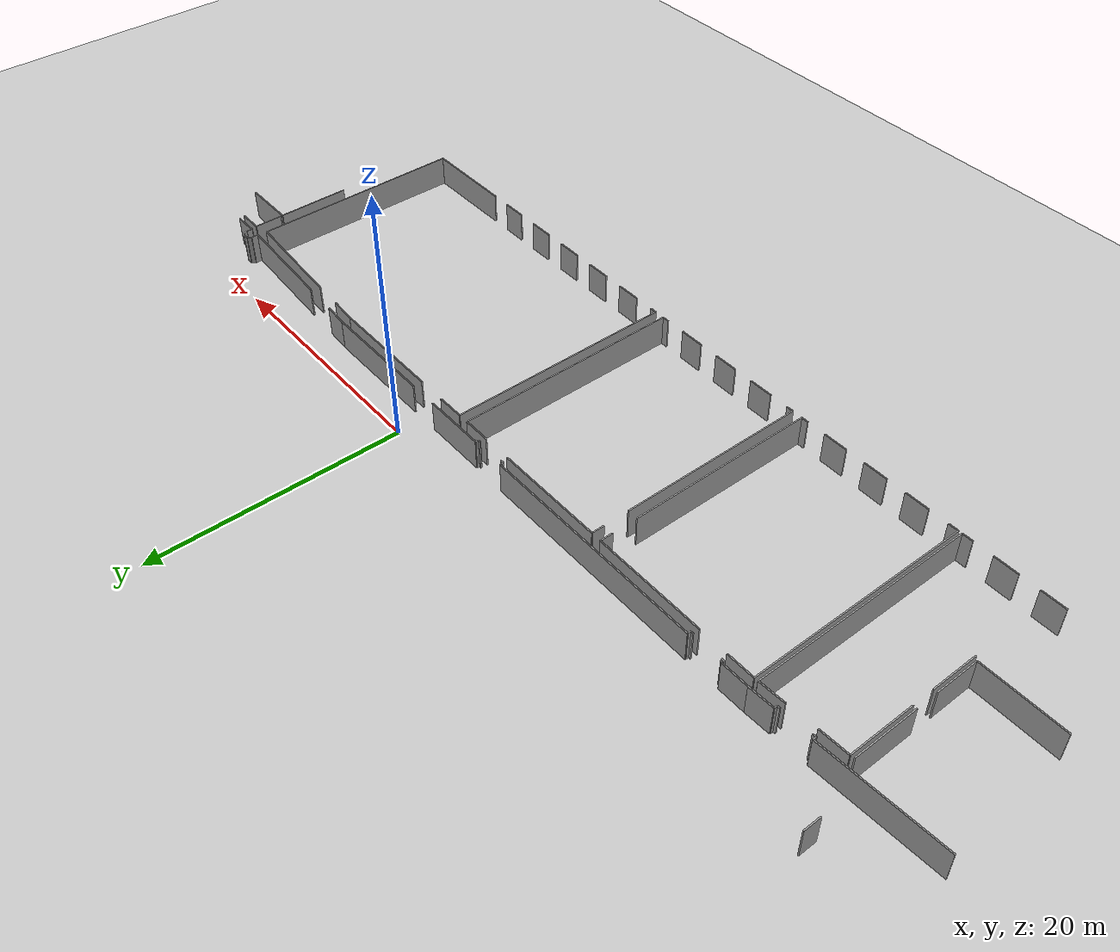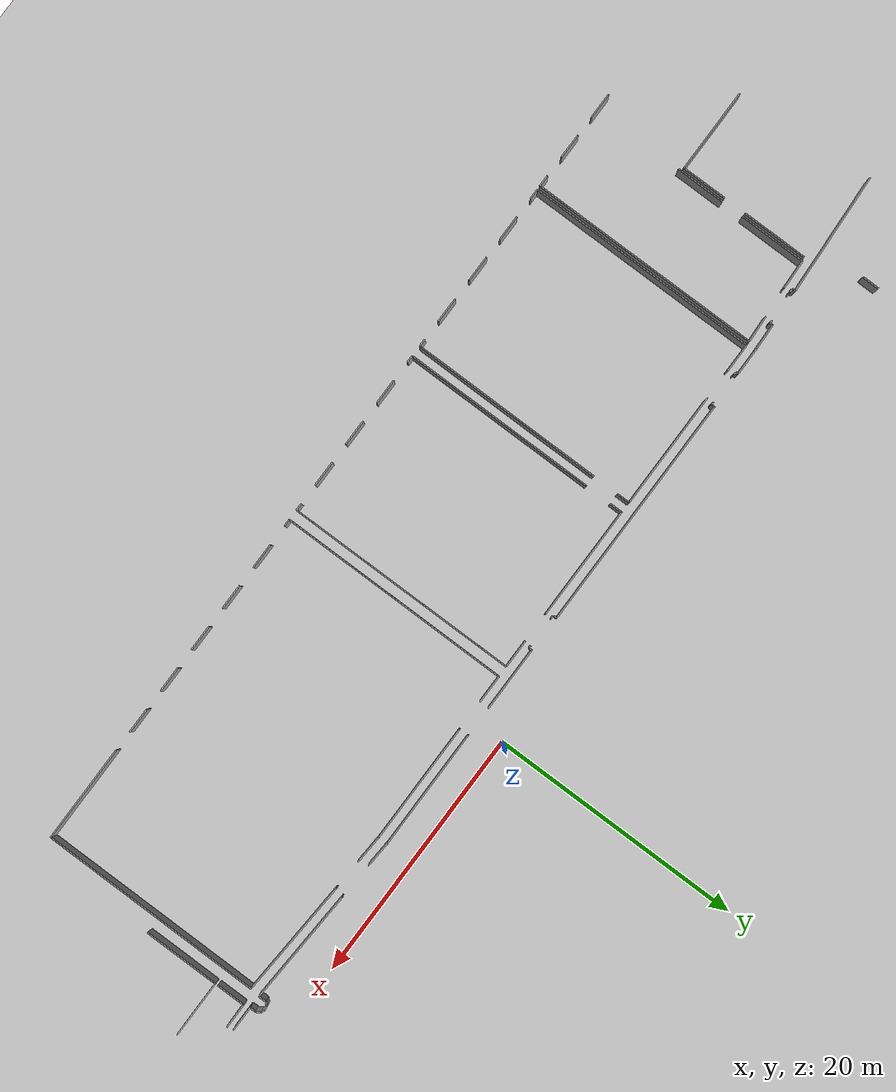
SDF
<sdf version="1.6">
 <world name="default">
  <model name="ground_plane">
   <static>1</static>
   <link name="link">
    <collision name="collision">
     <geometry><plane><normal>0 0 1</normal><size>100 100</size></plane></geometry>
     <surface><friction><ode><mu>100</mu><mu2>50</mu2></ode></friction></surface>
    </collision>
    <visual name="visual">
     <cast_shadows>0</cast_shadows>
     <geometry><plane><normal>0 0 1</normal><size>100 100</size></plane></geometry>
     <material>
      <script><uri>file://media/materials/scripts/gazebo.material</uri><name>Gazebo/Grey</name></script>
     </material>
    </visual>
   </link>
  </model>
  <model name="0510032217_A-40">
   <static>1</static>
   <link name="Wall_470">
    <collision name="Wall_470_Collision">
     <geometry><box><size>1.37765201502 0.1 2.5</size></box></geometry>
     <pose>0.688826007512 0 1.25 0 0 0</pose>
    </collision>
    <visual name="Wall_470_Visual">
     <pose>0.688826007512 0 1.25 0 0 0</pose>
     <geometry><box><size>1.37765201502 0.1 2.5</size></box></geometry>
     <material>
      <script><uri>file://media/materials/scripts/gazebo.material</uri><name>Gazebo/Grey</name></script>
      <ambient>1 1 1 1</ambient>
     </material>
    </visual>
    <pose>35.4521749061 -52.4312506345 0 0 0 1.57079632679</pose>
   </link>
   <link name="Wall_495">
    <collision name="Wall_495_Collision">
     <geometry><box><size>1.95538524008 0.1 2.5</size></box></geometry>
     <pose>0.977692620039 0 1.25 0 0 0</pose>
    </collision>
    <visual name="Wall_495_Visual">
     <pose>0.977692620039 0 1.25 0 0 0</pose>
     <geometry><box><size>1.95538524008 0.1 2.5</size></box></geometry>
     <material>
      <script><uri>file://media/materials/scripts/gazebo.material</uri><name>Gazebo/Grey</name></script>
      <ambient>1 1 1 1</ambient>
     </material>
    </visual>
    <pose>104.034425439 -56.1718607248 0 0 0 3.14159265359</pose>
   </link>
   <link name="Wall_496">
    <collision name="Wall_496_Collision">
     <geometry><box><size>0.462516495787 0.1 2.5</size></box></geometry>
     <pose>0.231258247894 0 1.25 0 0 0</pose>
    </collision>
    <visual name="Wall_496_Visual">
     <pose>0.231258247894 0 1.25 0 0 0</pose>
     <geometry><box><size>0.462516495787 0.1 2.5</size></box></geometry>
     <material>
      <script><uri>file://media/materials/scripts/gazebo.material</uri><name>Gazebo/Grey</name></script>
      <ambient>1 1 1 1</ambient>
     </material>
    </visual>
    <pose>102.079040199 -56.1718607248 0 0 0 1.57079632679</pose>
   </link>
   <link name="Wall_497">
    <collision name="Wall_497_Collision">
     <geometry><box><size>0.389348738676 0.1 2.5</size></box></geometry>
     <pose>0.194674369338 0 1.25 0 0 0</pose>
    </collision>
    <visual name="Wall_497_Visual">
     <pose>0.194674369338 0 1.25 0 0 0</pose>
     <geometry><box><size>0.389348738676 0.1 2.5</size></box></geometry>
     <material>
      <script><uri>file://media/materials/scripts/gazebo.material</uri><name>Gazebo/Grey</name></script>
      <ambient>1 1 1 1</ambient>
     </material>
    </visual>
    <pose>102.079040199 -55.709344229 0 0 0 2.0289054412</pose>
   </link>
   <link name="Wall_498">
    <collision name="Wall_498_Collision">
     <geometry><box><size>0.306541389418 0.1 2.5</size></box></geometry>
     <pose>0.153270694709 0 1.25 0 0 0</pose>
    </collision>
    <visual name="Wall_498_Visual">
     <pose>0.153270694709 0 1.25 0 0 0</pose>
     <geometry><box><size>0.306541389418 0.1 2.5</size></box></geometry>
     <material>
      <script><uri>file://media/materials/scripts/gazebo.material</uri><name>Gazebo/Grey</name></script>
      <ambient>1 1 1 1</ambient>
     </material>
    </visual>
    <pose>101.906849558 -55.3601411024 0 0 0 2.78999240306</pose>
   </link>
   <link name="Wall_499">
    <collision name="Wall_499_Collision">
     <geometry><box><size>0.302959336155 0.1 2.5</size></box></geometry>
     <pose>0.151479668077 0 1.25 0 0 0</pose>
    </collision>
    <visual name="Wall_499_Visual">
     <pose>0.151479668077 0 1.25 0 0 0</pose>
     <geometry><box><size>0.302959336155 0.1 2.5</size></box></geometry>
     <material>
      <script><uri>file://media/materials/scripts/gazebo.material</uri><name>Gazebo/Grey</name></script>
      <ambient>1 1 1 1</ambient>
     </material>
    </visual>
    <pose>101.619061517 -55.2545680642 0 0 0 -2.95027554689</pose>
   </link>
   <link name="Wall_500">
    <collision name="Wall_500_Collision">
     <geometry><box><size>0.35383877132 0.1 2.5</size></box></geometry>
     <pose>0.17691938566 0 1.25 0 0 0</pose>
    </collision>
    <visual name="Wall_500_Visual">
     <pose>0.17691938566 0 1.25 0 0 0</pose>
     <geometry><box><size>0.35383877132 0.1 2.5</size></box></geometry>
     <material>
      <script><uri>file://media/materials/scripts/gazebo.material</uri><name>Gazebo/Grey</name></script>
      <ambient>1 1 1 1</ambient>
     </material>
    </visual>
    <pose>101.321629784 -55.3121764288 0 0 0 -2.27953928958</pose>
   </link>
   <link name="Wall_501">
    <collision name="Wall_501_Collision">
     <geometry><box><size>0.566059283321 0.1 2.5</size></box></geometry>
     <pose>0.283029641661 0 1.25 0 0 0</pose>
    </collision>
    <visual name="Wall_501_Visual">
     <pose>0.283029641661 0 1.25 0 0 0</pose>
     <geometry><box><size>0.566059283321 0.1 2.5</size></box></geometry>
     <material>
      <script><uri>file://media/materials/scripts/gazebo.material</uri><name>Gazebo/Grey</name></script>
      <ambient>1 1 1 1</ambient>
     </material>
    </visual>
    <pose>101.091323216 -55.5808039793 0 0 0 -1.57079632679</pose>
   </link>
   <link name="Wall_502">
    <collision name="Wall_502_Collision">
     <geometry><box><size>8.98557457504 0.1 2.5</size></box></geometry>
     <pose>4.49278728752 0 1.25 0 0 0</pose>
    </collision>
    <visual name="Wall_502_Visual">
     <pose>4.49278728752 0 1.25 0 0 0</pose>
     <geometry><box><size>8.98557457504 0.1 2.5</size></box></geometry>
     <material>
      <script><uri>file://media/materials/scripts/gazebo.material</uri><name>Gazebo/Grey</name></script>
      <ambient>1 1 1 1</ambient>
     </material>
    </visual>
    <pose>101.091323216 -56.1468632626 0 0 0 3.08496302635</pose>
   </link>
   <link name="Wall_503">
    <collision name="Wall_503_Collision">
     <geometry><box><size>2.03557413261 0.1 2.5</size></box></geometry>
     <pose>1.01778706631 0 1.25 0 0 0</pose>
    </collision>
    <visual name="Wall_503_Visual">
     <pose>1.01778706631 0 1.25 0 0 0</pose>
     <geometry><box><size>2.03557413261 0.1 2.5</size></box></geometry>
     <material>
      <script><uri>file://media/materials/scripts/gazebo.material</uri><name>Gazebo/Grey</name></script>
      <ambient>1 1 1 1</ambient>
     </material>
    </visual>
    <pose>89.2609252868 -55.4943914323 0 0 0 3.07846614614</pose>
   </link>
   <link name="Wall_504">
    <collision name="Wall_504_Collision">
     <geometry><box><size>9.41122728657 0.1 2.5</size></box></geometry>
     <pose>4.70561364328 0 1.25 0 0 0</pose>
    </collision>
    <visual name="Wall_504_Visual">
     <pose>4.70561364328 0 1.25 0 0 0</pose>
     <geometry><box><size>9.41122728657 0.1 2.5</size></box></geometry>
     <material>
      <script><uri>file://media/materials/scripts/gazebo.material</uri><name>Gazebo/Grey</name></script>
      <ambient>1 1 1 1</ambient>
     </material>
    </visual>
    <pose>87.2294056441 -55.3659780733 0 0 0 3.14159265359</pose>
   </link>
   <link name="Wall_505">
    <collision name="Wall_505_Collision">
     <geometry><box><size>5.07562683991 0.1 2.5</size></box></geometry>
     <pose>2.53781341996 0 1.25 0 0 0</pose>
    </collision>
    <visual name="Wall_505_Visual">
     <pose>2.53781341996 0 1.25 0 0 0</pose>
     <geometry><box><size>5.07562683991 0.1 2.5</size></box></geometry>
     <material>
      <script><uri>file://media/materials/scripts/gazebo.material</uri><name>Gazebo/Grey</name></script>
      <ambient>1 1 1 1</ambient>
     </material>
    </visual>
    <pose>75.4488757487 -55.3659780733 0 0 0 3.14159265359</pose>
   </link>
   <link name="Wall_506">
    <collision name="Wall_506_Collision">
     <geometry><box><size>0.232083037255 0.1 2.5</size></box></geometry>
     <pose>0.116041518628 0 1.25 0 0 0</pose>
    </collision>
    <visual name="Wall_506_Visual">
     <pose>0.116041518628 0 1.25 0 0 0</pose>
     <geometry><box><size>0.232083037255 0.1 2.5</size></box></geometry>
     <material>
      <script><uri>file://media/materials/scripts/gazebo.material</uri><name>Gazebo/Grey</name></script>
      <ambient>1 1 1 1</ambient>
     </material>
    </visual>
    <pose>70.3732489087 -55.3659780733 0 0 0 -1.57079632679</pose>
   </link>
   <link name="Wall_507">
    <collision name="Wall_507_Collision">
     <geometry><box><size>0.220789767536 0.1 2.5</size></box></geometry>
     <pose>0.110394883768 0 1.25 0 0 0</pose>
    </collision>
    <visual name="Wall_507_Visual">
     <pose>0.110394883768 0 1.25 0 0 0</pose>
     <geometry><box><size>0.220789767536 0.1 2.5</size></box></geometry>
     <material>
      <script><uri>file://media/materials/scripts/gazebo.material</uri><name>Gazebo/Grey</name></script>
      <ambient>1 1 1 1</ambient>
     </material>
    </visual>
    <pose>70.3732489087 -55.5980611105 0 0 0 3.14159265359</pose>
   </link>
   <link name="Wall_508">
    <collision name="Wall_508_Collision">
     <geometry><box><size>0.302126687646 0.1 2.5</size></box></geometry>
     <pose>0.151063343823 0 1.25 0 0 0</pose>
    </collision>
    <visual name="Wall_508_Visual">
     <pose>0.151063343823 0 1.25 0 0 0</pose>
     <geometry><box><size>0.302126687646 0.1 2.5</size></box></geometry>
     <material>
      <script><uri>file://media/materials/scripts/gazebo.material</uri><name>Gazebo/Grey</name></script>
      <ambient>1 1 1 1</ambient>
     </material>
    </visual>
    <pose>67.822619531 -55.5980611105 0 0 0 3.14159265359</pose>
   </link>
   <link name="Wall_509">
    <collision name="Wall_509_Collision">
     <geometry><box><size>0.279032585524 0.1 2.5</size></box></geometry>
     <pose>0.139516292762 0 1.25 0 0 0</pose>
    </collision>
    <visual name="Wall_509_Visual">
     <pose>0.139516292762 0 1.25 0 0 0</pose>
     <geometry><box><size>0.279032585524 0.1 2.5</size></box></geometry>
     <material>
      <script><uri>file://media/materials/scripts/gazebo.material</uri><name>Gazebo/Grey</name></script>
      <ambient>1 1 1 1</ambient>
     </material>
    </visual>
    <pose>67.5204928434 -55.5980611105 0 0 0 1.57079632679</pose>
   </link>
   <link name="Wall_510">
    <collision name="Wall_510_Collision">
     <geometry><box><size>18.4979951274 0.1 2.5</size></box></geometry>
     <pose>9.2489975637 0 1.25 0 0 0</pose>
    </collision>
    <visual name="Wall_510_Visual">
     <pose>9.2489975637 0 1.25 0 0 0</pose>
     <geometry><box><size>18.4979951274 0.1 2.5</size></box></geometry>
     <material>
      <script><uri>file://media/materials/scripts/gazebo.material</uri><name>Gazebo/Grey</name></script>
      <ambient>1 1 1 1</ambient>
     </material>
    </visual>
    <pose>67.5204928434 -55.319028525 0 0 0 3.14159265359</pose>
   </link>
   <link name="Wall_511">
    <collision name="Wall_511_Collision">
     <geometry><box><size>0.256953608771 0.1 2.5</size></box></geometry>
     <pose>0.128476804385 0 1.25 0 0 0</pose>
    </collision>
    <visual name="Wall_511_Visual">
     <pose>0.128476804385 0 1.25 0 0 0</pose>
     <geometry><box><size>0.256953608771 0.1 2.5</size></box></geometry>
     <material>
      <script><uri>file://media/materials/scripts/gazebo.material</uri><name>Gazebo/Grey</name></script>
      <ambient>1 1 1 1</ambient>
     </material>
    </visual>
    <pose>49.022497716 -55.319028525 0 0 0 -1.57079632679</pose>
   </link>
   <link name="Wall_512">
    <collision name="Wall_512_Collision">
     <geometry><box><size>0.209623388488 0.1 2.5</size></box></geometry>
     <pose>0.104811694244 0 1.25 0 0 0</pose>
    </collision>
    <visual name="Wall_512_Visual">
     <pose>0.104811694244 0 1.25 0 0 0</pose>
     <geometry><box><size>0.209623388488 0.1 2.5</size></box></geometry>
     <material>
      <script><uri>file://media/materials/scripts/gazebo.material</uri><name>Gazebo/Grey</name></script>
      <ambient>1 1 1 1</ambient>
     </material>
    </visual>
    <pose>49.022497716 -55.5759821338 0 0 0 3.14159265359</pose>
   </link>
   <link name="Wall_513">
    <collision name="Wall_513_Collision">
     <geometry><box><size>0.233478834636 0.1 2.5</size></box></geometry>
     <pose>0.116739417318 0 1.25 0 0 0</pose>
    </collision>
    <visual name="Wall_513_Visual">
     <pose>0.116739417318 0 1.25 0 0 0</pose>
     <geometry><box><size>0.233478834636 0.1 2.5</size></box></geometry>
     <material>
      <script><uri>file://media/materials/scripts/gazebo.material</uri><name>Gazebo/Grey</name></script>
      <ambient>1 1 1 1</ambient>
     </material>
    </visual>
    <pose>46.4089305654 -55.5759821338 0 0 0 3.14159265359</pose>
   </link>
   <link name="Wall_514">
    <collision name="Wall_514_Collision">
     <geometry><box><size>0.202263729571 0.1 2.5</size></box></geometry>
     <pose>0.101131864785 0 1.25 0 0 0</pose>
    </collision>
    <visual name="Wall_514_Visual">
     <pose>0.101131864785 0 1.25 0 0 0</pose>
     <geometry><box><size>0.202263729571 0.1 2.5</size></box></geometry>
     <material>
      <script><uri>file://media/materials/scripts/gazebo.material</uri><name>Gazebo/Grey</name></script>
      <ambient>1 1 1 1</ambient>
     </material>
    </visual>
    <pose>46.1754517308 -55.5759821338 0 0 0 1.57079632679</pose>
   </link>
   <link name="Wall_515">
    <collision name="Wall_515_Collision">
     <geometry><box><size>2.19335810338 0.1 2.5</size></box></geometry>
     <pose>1.09667905169 0 1.25 0 0 0</pose>
    </collision>
    <visual name="Wall_515_Visual">
     <pose>1.09667905169 0 1.25 0 0 0</pose>
     <geometry><box><size>2.19335810338 0.1 2.5</size></box></geometry>
     <material>
      <script><uri>file://media/materials/scripts/gazebo.material</uri><name>Gazebo/Grey</name></script>
      <ambient>1 1 1 1</ambient>
     </material>
    </visual>
    <pose>46.1754517308 -55.3737184042 0 0 0 -3.13465032948</pose>
   </link>
   <link name="Wall_516">
    <collision name="Wall_516_Collision">
     <geometry><box><size>2.01683263005 0.1 2.5</size></box></geometry>
     <pose>1.00841631502 0 1.25 0 0 0</pose>
    </collision>
    <visual name="Wall_516_Visual">
     <pose>1.00841631502 0 1.25 0 0 0</pose>
     <geometry><box><size>2.01683263005 0.1 2.5</size></box></geometry>
     <material>
      <script><uri>file://media/materials/scripts/gazebo.material</uri><name>Gazebo/Grey</name></script>
      <ambient>1 1 1 1</ambient>
     </material>
    </visual>
    <pose>43.9821464826 -55.3889452847 0 0 0 -3.09923764667</pose>
   </link>
   <link name="Wall_517">
    <collision name="Wall_517_Collision">
     <geometry><box><size>0.241980509593 0.1 2.5</size></box></geometry>
     <pose>0.120990254796 0 1.25 0 0 0</pose>
    </collision>
    <visual name="Wall_517_Visual">
     <pose>0.120990254796 0 1.25 0 0 0</pose>
     <geometry><box><size>0.241980509593 0.1 2.5</size></box></geometry>
     <material>
      <script><uri>file://media/materials/scripts/gazebo.material</uri><name>Gazebo/Grey</name></script>
      <ambient>1 1 1 1</ambient>
     </material>
    </visual>
    <pose>41.9671226271 -55.4743427063 0 0 0 -1.57079632679</pose>
   </link>
   <link name="Wall_518">
    <collision name="Wall_518_Collision">
     <geometry><box><size>0.233755795453 0.1 2.5</size></box></geometry>
     <pose>0.116877897727 0 1.25 0 0 0</pose>
    </collision>
    <visual name="Wall_518_Visual">
     <pose>0.116877897727 0 1.25 0 0 0</pose>
     <geometry><box><size>0.233755795453 0.1 2.5</size></box></geometry>
     <material>
      <script><uri>file://media/materials/scripts/gazebo.material</uri><name>Gazebo/Grey</name></script>
      <ambient>1 1 1 1</ambient>
     </material>
    </visual>
    <pose>41.9671226271 -55.7163232159 0 0 0 -3.10575791879</pose>
   </link>
   <link name="Wall_519">
    <collision name="Wall_519_Collision">
     <geometry><box><size>0.279758046826 0.1 2.5</size></box></geometry>
     <pose>0.139879023413 0 1.25 0 0 0</pose>
    </collision>
    <visual name="Wall_519_Visual">
     <pose>0.139879023413 0 1.25 0 0 0</pose>
     <geometry><box><size>0.279758046826 0.1 2.5</size></box></geometry>
     <material>
      <script><uri>file://media/materials/scripts/gazebo.material</uri><name>Gazebo/Grey</name></script>
      <ambient>1 1 1 1</ambient>
     </material>
    </visual>
    <pose>39.3777915948 -55.8782357121 0 0 0 -3.03844881538</pose>
   </link>
   <link name="Wall_520">
    <collision name="Wall_520_Collision">
     <geometry><box><size>0.268754441173 0.1 2.5</size></box></geometry>
     <pose>0.134377220587 0 1.25 0 0 0</pose>
    </collision>
    <visual name="Wall_520_Visual">
     <pose>0.134377220587 0 1.25 0 0 0</pose>
     <geometry><box><size>0.268754441173 0.1 2.5</size></box></geometry>
     <material>
      <script><uri>file://media/materials/scripts/gazebo.material</uri><name>Gazebo/Grey</name></script>
      <ambient>1 1 1 1</ambient>
     </material>
    </visual>
    <pose>39.0995203533 -55.9070398944 0 0 0 1.57079632679</pose>
   </link>
   <link name="Wall_521">
    <collision name="Wall_521_Collision">
     <geometry><box><size>9.62046632689 0.1 2.5</size></box></geometry>
     <pose>4.81023316344 0 1.25 0 0 0</pose>
    </collision>
    <visual name="Wall_521_Visual">
     <pose>4.81023316344 0 1.25 0 0 0</pose>
     <geometry><box><size>9.62046632689 0.1 2.5</size></box></geometry>
     <material>
      <script><uri>file://media/materials/scripts/gazebo.material</uri><name>Gazebo/Grey</name></script>
      <ambient>1 1 1 1</ambient>
     </material>
    </visual>
    <pose>39.0995203533 -55.6382854533 0 0 0 -3.08371049344</pose>
   </link>
   <link name="Wall_527">
    <collision name="Wall_527_Collision">
     <geometry><box><size>0.876053192569 0.1 2.5</size></box></geometry>
     <pose>0.438026596285 0 1.25 0 0 0</pose>
    </collision>
    <visual name="Wall_527_Visual">
     <pose>0.438026596285 0 1.25 0 0 0</pose>
     <geometry><box><size>0.876053192569 0.1 2.5</size></box></geometry>
     <material>
      <script><uri>file://media/materials/scripts/gazebo.material</uri><name>Gazebo/Grey</name></script>
      <ambient>1 1 1 1</ambient>
     </material>
    </visual>
    <pose>43.8944650289 -74.4386610496 0 0 0 3.14159265359</pose>
   </link>
   <link name="Wall_528">
    <collision name="Wall_528_Collision">
     <geometry><box><size>1.97733732616 0.1 2.5</size></box></geometry>
     <pose>0.98866866308 0 1.25 0 0 0</pose>
    </collision>
    <visual name="Wall_528_Visual">
     <pose>0.98866866308 0 1.25 0 0 0</pose>
     <geometry><box><size>1.97733732616 0.1 2.5</size></box></geometry>
     <material>
      <script><uri>file://media/materials/scripts/gazebo.material</uri><name>Gazebo/Grey</name></script>
      <ambient>1 1 1 1</ambient>
     </material>
    </visual>
    <pose>41.3997944371 -74.4386610496 0 0 0 3.14159265359</pose>
   </link>
   <link name="Wall_529">
    <collision name="Wall_529_Collision">
     <geometry><box><size>2.01070957263 0.1 2.5</size></box></geometry>
     <pose>1.00535478632 0 1.25 0 0 0</pose>
    </collision>
    <visual name="Wall_529_Visual">
     <pose>1.00535478632 0 1.25 0 0 0</pose>
     <geometry><box><size>2.01070957263 0.1 2.5</size></box></geometry>
     <material>
      <script><uri>file://media/materials/scripts/gazebo.material</uri><name>Gazebo/Grey</name></script>
      <ambient>1 1 1 1</ambient>
     </material>
    </visual>
    <pose>37.8288371739 -74.4386610496 0 0 0 3.14159265359</pose>
   </link>
   <link name="Wall_533">
    <collision name="Wall_533_Collision">
     <geometry><box><size>3.85747639834 0.1 2.5</size></box></geometry>
     <pose>1.92873819917 0 1.25 0 0 0</pose>
    </collision>
    <visual name="Wall_533_Visual">
     <pose>1.92873819917 0 1.25 0 0 0</pose>
     <geometry><box><size>3.85747639834 0.1 2.5</size></box></geometry>
     <material>
      <script><uri>file://media/materials/scripts/gazebo.material</uri><name>Gazebo/Grey</name></script>
      <ambient>1 1 1 1</ambient>
     </material>
    </visual>
    <pose>37.0946477515 -67.3634910161 0 0 0 1.57079632679</pose>
   </link>
   <link name="Wall_534">
    <collision name="Wall_534_Collision">
     <geometry><box><size>5.2813166176 0.1 2.5</size></box></geometry>
     <pose>2.6406583088 0 1.25 0 0 0</pose>
    </collision>
    <visual name="Wall_534_Visual">
     <pose>2.6406583088 0 1.25 0 0 0</pose>
     <geometry><box><size>5.2813166176 0.1 2.5</size></box></geometry>
     <material>
      <script><uri>file://media/materials/scripts/gazebo.material</uri><name>Gazebo/Grey</name></script>
      <ambient>1 1 1 1</ambient>
     </material>
    </visual>
    <pose>37.0946477515 -61.7652015024 0 0 0 1.57079632679</pose>
   </link>
   <link name="Wall_535">
    <collision name="Wall_535_Collision">
     <geometry><box><size>2.31322733828 0.1 2.5</size></box></geometry>
     <pose>1.15661366914 0 1.25 0 0 0</pose>
    </collision>
    <visual name="Wall_535_Visual">
     <pose>1.15661366914 0 1.25 0 0 0</pose>
     <geometry><box><size>2.31322733828 0.1 2.5</size></box></geometry>
     <material>
      <script><uri>file://media/materials/scripts/gazebo.material</uri><name>Gazebo/Grey</name></script>
      <ambient>1 1 1 1</ambient>
     </material>
    </visual>
    <pose>37.0946477515 -56.4838848848 0 0 0 0.0432936357142</pose>
   </link>
   <link name="Wall_536">
    <collision name="Wall_536_Collision">
     <geometry><box><size>2.09732818107 0.1 2.5</size></box></geometry>
     <pose>1.04866409054 0 1.25 0 0 0</pose>
    </collision>
    <visual name="Wall_536_Visual">
     <pose>1.04866409054 0 1.25 0 0 0</pose>
     <geometry><box><size>2.09732818107 0.1 2.5</size></box></geometry>
     <material>
      <script><uri>file://media/materials/scripts/gazebo.material</uri><name>Gazebo/Grey</name></script>
      <ambient>1 1 1 1</ambient>
     </material>
    </visual>
    <pose>41.7836387169 -56.2252816973 0 0 0 0.0556897971011</pose>
   </link>
   <link name="Wall_537">
    <collision name="Wall_537_Collision">
     <geometry><box><size>18.3301264223 0.1 2.5</size></box></geometry>
     <pose>9.16506321116 0 1.25 0 0 0</pose>
    </collision>
    <visual name="Wall_537_Visual">
     <pose>9.16506321116 0 1.25 0 0 0</pose>
     <geometry><box><size>18.3301264223 0.1 2.5</size></box></geometry>
     <material>
      <script><uri>file://media/materials/scripts/gazebo.material</uri><name>Gazebo/Grey</name></script>
      <ambient>1 1 1 1</ambient>
     </material>
    </visual>
    <pose>43.8777154604 -56.10854228 0 0 0 -1.569882554</pose>
   </link>
   <link name="Wall_538">
    <collision name="Wall_538_Collision">
     <geometry><box><size>6.59108212364 0.1 2.5</size></box></geometry>
     <pose>3.29554106182 0 1.25 0 0 0</pose>
    </collision>
    <visual name="Wall_538_Visual">
     <pose>3.29554106182 0 1.25 0 0 0</pose>
     <geometry><box><size>6.59108212364 0.1 2.5</size></box></geometry>
     <material>
      <script><uri>file://media/materials/scripts/gazebo.material</uri><name>Gazebo/Grey</name></script>
      <ambient>1 1 1 1</ambient>
     </material>
    </visual>
    <pose>36.8192949954 -67.0882651507 0 0 0 3.14159265359</pose>
   </link>
   <link name="Wall_541">
    <collision name="Wall_541_Collision">
     <geometry><box><size>5.22142422089 0.1 2.5</size></box></geometry>
     <pose>2.61071211045 0 1.25 0 0 0</pose>
    </collision>
    <visual name="Wall_541_Visual">
     <pose>2.61071211045 0 1.25 0 0 0</pose>
     <geometry><box><size>5.22142422089 0.1 2.5</size></box></geometry>
     <material>
      <script><uri>file://media/materials/scripts/gazebo.material</uri><name>Gazebo/Grey</name></script>
      <ambient>1 1 1 1</ambient>
     </material>
    </visual>
    <pose>36.8088899604 -56.5383209826 0 0 0 -1.57079632679</pose>
   </link>
   <link name="Wall_542">
    <collision name="Wall_542_Collision">
     <geometry><box><size>3.56335901438 0.1 2.5</size></box></geometry>
     <pose>1.78167950719 0 1.25 0 0 0</pose>
    </collision>
    <visual name="Wall_542_Visual">
     <pose>1.78167950719 0 1.25 0 0 0</pose>
     <geometry><box><size>3.56335901438 0.1 2.5</size></box></geometry>
     <material>
      <script><uri>file://media/materials/scripts/gazebo.material</uri><name>Gazebo/Grey</name></script>
      <ambient>1 1 1 1</ambient>
     </material>
    </visual>
    <pose>36.8088899604 -63.5249213278 0 0 0 -1.56787631515</pose>
   </link>
   <link name="Wall_543">
    <collision name="Wall_543_Collision">
     <geometry><box><size>0.582555070551 0.1 2.5</size></box></geometry>
     <pose>0.291277535276 0 1.25 0 0 0</pose>
    </collision>
    <visual name="Wall_543_Visual">
     <pose>0.291277535276 0 1.25 0 0 0</pose>
     <geometry><box><size>0.582555070551 0.1 2.5</size></box></geometry>
     <material>
      <script><uri>file://media/materials/scripts/gazebo.material</uri><name>Gazebo/Grey</name></script>
      <ambient>1 1 1 1</ambient>
     </material>
    </visual>
    <pose>57.9930337022 -74.4330778601 0 0 0 3.14159265359</pose>
   </link>
   <link name="Wall_544">
    <collision name="Wall_544_Collision">
     <geometry><box><size>2.011724698 0.1 2.5</size></box></geometry>
     <pose>1.005862349 0 1.25 0 0 0</pose>
    </collision>
    <visual name="Wall_544_Visual">
     <pose>1.005862349 0 1.25 0 0 0</pose>
     <geometry><box><size>2.011724698 0.1 2.5</size></box></geometry>
     <material>
      <script><uri>file://media/materials/scripts/gazebo.material</uri><name>Gazebo/Grey</name></script>
      <ambient>1 1 1 1</ambient>
     </material>
    </visual>
    <pose>55.8336082631 -74.4330778601 0 0 0 3.14159265359</pose>
   </link>
   <link name="Wall_545">
    <collision name="Wall_545_Collision">
     <geometry><box><size>2.031392752 0.1 2.5</size></box></geometry>
     <pose>1.015696376 0 1.25 0 0 0</pose>
    </collision>
    <visual name="Wall_545_Visual">
     <pose>1.015696376 0 1.25 0 0 0</pose>
     <geometry><box><size>2.031392752 0.1 2.5</size></box></geometry>
     <material>
      <script><uri>file://media/materials/scripts/gazebo.material</uri><name>Gazebo/Grey</name></script>
      <ambient>1 1 1 1</ambient>
     </material>
    </visual>
    <pose>52.2329585829 -74.4330778601 0 0 0 3.14159265359</pose>
   </link>
   <link name="Wall_546">
    <collision name="Wall_546_Collision">
     <geometry><box><size>2.00233478835 0.1 2.5</size></box></geometry>
     <pose>1.00116739417 0 1.25 0 0 0</pose>
    </collision>
    <visual name="Wall_546_Visual">
     <pose>1.00116739417 0 1.25 0 0 0</pose>
     <geometry><box><size>2.00233478835 0.1 2.5</size></box></geometry>
     <material>
      <script><uri>file://media/materials/scripts/gazebo.material</uri><name>Gazebo/Grey</name></script>
      <ambient>1 1 1 1</ambient>
     </material>
    </visual>
    <pose>48.6200005076 -74.4330778601 0 0 0 3.14159265359</pose>
   </link>
   <link name="Wall_547">
    <collision name="Wall_547_Collision">
     <geometry><box><size>0.827073393564 0.1 2.5</size></box></geometry>
     <pose>0.413536696782 0 1.25 0 0 0</pose>
    </collision>
    <visual name="Wall_547_Visual">
     <pose>0.413536696782 0 1.25 0 0 0</pose>
     <geometry><box><size>0.827073393564 0.1 2.5</size></box></geometry>
     <material>
      <script><uri>file://media/materials/scripts/gazebo.material</uri><name>Gazebo/Grey</name></script>
      <ambient>1 1 1 1</ambient>
     </material>
    </visual>
    <pose>45.0215079687 -74.4330778601 0 0 0 3.14159265359</pose>
   </link>
   <link name="Wall_548">
    <collision name="Wall_548_Collision">
     <geometry><box><size>18.3438229621 0.1 2.5</size></box></geometry>
     <pose>9.17191148107 0 1.25 0 0 0</pose>
    </collision>
    <visual name="Wall_548_Visual">
     <pose>9.17191148107 0 1.25 0 0 0</pose>
     <geometry><box><size>18.3438229621 0.1 2.5</size></box></geometry>
     <material>
      <script><uri>file://media/materials/scripts/gazebo.material</uri><name>Gazebo/Grey</name></script>
      <ambient>1 1 1 1</ambient>
     </material>
    </visual>
    <pose>44.1944345752 -74.4330778601 0 0 0 1.57079632679</pose>
   </link>
   <link name="Wall_549">
    <collision name="Wall_549_Collision">
     <geometry><box><size>2.25472033296 0.1 2.5</size></box></geometry>
     <pose>1.12736016648 0 1.25 0 0 0</pose>
    </collision>
    <visual name="Wall_549_Visual">
     <pose>1.12736016648 0 1.25 0 0 0</pose>
     <geometry><box><size>2.25472033296 0.1 2.5</size></box></geometry>
     <material>
      <script><uri>file://media/materials/scripts/gazebo.material</uri><name>Gazebo/Grey</name></script>
      <ambient>1 1 1 1</ambient>
     </material>
    </visual>
    <pose>44.1944345752 -56.089254898 0 0 0 0.0</pose>
   </link>
   <link name="Wall_550">
    <collision name="Wall_550_Collision">
     <geometry><box><size>9.21099380774 0.1 2.5</size></box></geometry>
     <pose>4.60549690387 0 1.25 0 0 0</pose>
    </collision>
    <visual name="Wall_550_Visual">
     <pose>4.60549690387 0 1.25 0 0 0</pose>
     <geometry><box><size>9.21099380774 0.1 2.5</size></box></geometry>
     <material>
      <script><uri>file://media/materials/scripts/gazebo.material</uri><name>Gazebo/Grey</name></script>
      <ambient>1 1 1 1</ambient>
     </material>
    </visual>
    <pose>48.7998045884 -56.089254898 0 0 0 0.0</pose>
   </link>
   <link name="Wall_551">
    <collision name="Wall_551_Collision">
     <geometry><box><size>1.02667241904 0.1 2.5</size></box></geometry>
     <pose>0.513336209522 0 1.25 0 0 0</pose>
    </collision>
    <visual name="Wall_551_Visual">
     <pose>0.513336209522 0 1.25 0 0 0</pose>
     <geometry><box><size>1.02667241904 0.1 2.5</size></box></geometry>
     <material>
      <script><uri>file://media/materials/scripts/gazebo.material</uri><name>Gazebo/Grey</name></script>
      <ambient>1 1 1 1</ambient>
     </material>
    </visual>
    <pose>58.0107983961 -56.089254898 0 0 0 -1.57079632679</pose>
   </link>
   <link name="Wall_552">
    <collision name="Wall_552_Collision">
     <geometry><box><size>15.2734597271 0.1 2.5</size></box></geometry>
     <pose>7.63672986357 0 1.25 0 0 0</pose>
    </collision>
    <visual name="Wall_552_Visual">
     <pose>7.63672986357 0 1.25 0 0 0</pose>
     <geometry><box><size>15.2734597271 0.1 2.5</size></box></geometry>
     <material>
      <script><uri>file://media/materials/scripts/gazebo.material</uri><name>Gazebo/Grey</name></script>
      <ambient>1 1 1 1</ambient>
     </material>
    </visual>
    <pose>58.0107983961 -59.1596284641 0 0 0 -1.57195943576</pose>
   </link>
   <link name="Wall_553">
    <collision name="Wall_553_Collision">
     <geometry><box><size>0.573038270226 0.1 2.5</size></box></geometry>
     <pose>0.286519135113 0 1.25 0 0 0</pose>
    </collision>
    <visual name="Wall_553_Visual">
     <pose>0.286519135113 0 1.25 0 0 0</pose>
     <geometry><box><size>0.573038270226 0.1 2.5</size></box></geometry>
     <material>
      <script><uri>file://media/materials/scripts/gazebo.material</uri><name>Gazebo/Grey</name></script>
      <ambient>1 1 1 1</ambient>
     </material>
    </visual>
    <pose>72.3924601563 -74.4441173485 0 0 0 3.14159265359</pose>
   </link>
   <link name="Wall_554">
    <collision name="Wall_554_Collision">
     <geometry><box><size>1.99129529997 0.1 2.5</size></box></geometry>
     <pose>0.995647649985 0 1.25 0 0 0</pose>
    </collision>
    <visual name="Wall_554_Visual">
     <pose>0.995647649985 0 1.25 0 0 0</pose>
     <geometry><box><size>1.99129529997 0.1 2.5</size></box></geometry>
     <material>
      <script><uri>file://media/materials/scripts/gazebo.material</uri><name>Gazebo/Grey</name></script>
      <ambient>1 1 1 1</ambient>
     </material>
    </visual>
    <pose>70.2008044869 -74.4441173485 0 0 0 3.14159265359</pose>
   </link>
   <link name="Wall_555">
    <collision name="Wall_555_Collision">
     <geometry><box><size>2.01883057558 0.1 2.5</size></box></geometry>
     <pose>1.00941528779 0 1.25 0 0 0</pose>
    </collision>
    <visual name="Wall_555_Visual">
     <pose>1.00941528779 0 1.25 0 0 0</pose>
     <geometry><box><size>2.01883057558 0.1 2.5</size></box></geometry>
     <material>
      <script><uri>file://media/materials/scripts/gazebo.material</uri><name>Gazebo/Grey</name></script>
      <ambient>1 1 1 1</ambient>
     </material>
    </visual>
    <pose>66.6260405035 -74.4441173485 0 0 0 3.14159265359</pose>
   </link>
   <link name="Wall_556">
    <collision name="Wall_556_Collision">
     <geometry><box><size>2.00614150848 0.1 2.5</size></box></geometry>
     <pose>1.00307075424 0 1.25 0 0 0</pose>
    </collision>
    <visual name="Wall_556_Visual">
     <pose>1.00307075424 0 1.25 0 0 0</pose>
     <geometry><box><size>2.00614150848 0.1 2.5</size></box></geometry>
     <material>
      <script><uri>file://media/materials/scripts/gazebo.material</uri><name>Gazebo/Grey</name></script>
      <ambient>1 1 1 1</ambient>
     </material>
    </visual>
    <pose>63.0237412445 -74.4441173485 0 0 0 3.14159265359</pose>
   </link>
   <link name="Wall_557">
    <collision name="Wall_557_Collision">
     <geometry><box><size>0.567835752715 0.1 2.5</size></box></geometry>
     <pose>0.283917876358 0 1.25 0 0 0</pose>
    </collision>
    <visual name="Wall_557_Visual">
     <pose>0.283917876358 0 1.25 0 0 0</pose>
     <geometry><box><size>0.567835752715 0.1 2.5</size></box></geometry>
     <material>
      <script><uri>file://media/materials/scripts/gazebo.material</uri><name>Gazebo/Grey</name></script>
      <ambient>1 1 1 1</ambient>
     </material>
    </visual>
    <pose>59.4277865191 -74.4441173485 0 0 0 3.14159265359</pose>
   </link>
   <link name="Wall_558">
    <collision name="Wall_558_Collision">
     <geometry><box><size>15.2820779616 0.1 2.5</size></box></geometry>
     <pose>7.64103898081 0 1.25 0 0 0</pose>
    </collision>
    <visual name="Wall_558_Visual">
     <pose>7.64103898081 0 1.25 0 0 0</pose>
     <geometry><box><size>15.2820779616 0.1 2.5</size></box></geometry>
     <material>
      <script><uri>file://media/materials/scripts/gazebo.material</uri><name>Gazebo/Grey</name></script>
      <ambient>1 1 1 1</ambient>
     </material>
    </visual>
    <pose>58.8599507664 -74.4441173485 0 0 0 1.57079632679</pose>
   </link>
   <link name="Wall_559">
    <collision name="Wall_559_Collision">
     <geometry><box><size>1.00408587961 0.1 2.5</size></box></geometry>
     <pose>0.502042939803 0 1.25 0 0 0</pose>
    </collision>
    <visual name="Wall_559_Visual">
     <pose>0.502042939803 0 1.25 0 0 0</pose>
     <geometry><box><size>1.00408587961 0.1 2.5</size></box></geometry>
     <material>
      <script><uri>file://media/materials/scripts/gazebo.material</uri><name>Gazebo/Grey</name></script>
      <ambient>1 1 1 1</ambient>
     </material>
    </visual>
    <pose>58.8599507664 -57.1097096741 0 0 0 1.57079632679</pose>
   </link>
   <link name="Wall_560">
    <collision name="Wall_560_Collision">
     <geometry><box><size>8.92688559537 0.1 2.5</size></box></geometry>
     <pose>4.46344279769 0 1.25 0 0 0</pose>
    </collision>
    <visual name="Wall_560_Visual">
     <pose>4.46344279769 0 1.25 0 0 0</pose>
     <geometry><box><size>8.92688559537 0.1 2.5</size></box></geometry>
     <material>
      <script><uri>file://media/materials/scripts/gazebo.material</uri><name>Gazebo/Grey</name></script>
      <ambient>1 1 1 1</ambient>
     </material>
    </visual>
    <pose>58.8599507664 -56.1056237945 0 0 0 0.0</pose>
   </link>
   <link name="Wall_561">
    <collision name="Wall_561_Collision">
     <geometry><box><size>2.23962034311 0.1 2.5</size></box></geometry>
     <pose>1.11981017156 0 1.25 0 0 0</pose>
    </collision>
    <visual name="Wall_561_Visual">
     <pose>1.11981017156 0 1.25 0 0 0</pose>
     <geometry><box><size>2.23962034311 0.1 2.5</size></box></geometry>
     <material>
      <script><uri>file://media/materials/scripts/gazebo.material</uri><name>Gazebo/Grey</name></script>
      <ambient>1 1 1 1</ambient>
     </material>
    </visual>
    <pose>70.1273347883 -56.1056237945 0 0 0 0.0</pose>
   </link>
   <link name="Wall_562">
    <collision name="Wall_562_Collision">
     <geometry><box><size>18.33851129 0.1 2.5</size></box></geometry>
     <pose>9.16925564502 0 1.25 0 0 0</pose>
    </collision>
    <visual name="Wall_562_Visual">
     <pose>9.16925564502 0 1.25 0 0 0</pose>
     <geometry><box><size>18.33851129 0.1 2.5</size></box></geometry>
     <material>
      <script><uri>file://media/materials/scripts/gazebo.material</uri><name>Gazebo/Grey</name></script>
      <ambient>1 1 1 1</ambient>
     </material>
    </visual>
    <pose>72.3669551315 -56.1056237945 0 0 0 -1.56940553598</pose>
   </link>
   <link name="Wall_563">
    <collision name="Wall_563_Collision">
     <geometry><box><size>7.57346969851 0.1 2.5</size></box></geometry>
     <pose>3.78673484925 0 1.25 0 0 0</pose>
    </collision>
    <visual name="Wall_563_Visual">
     <pose>3.78673484925 0 1.25 0 0 0</pose>
     <geometry><box><size>7.57346969851 0.1 2.5</size></box></geometry>
     <material>
      <script><uri>file://media/materials/scripts/gazebo.material</uri><name>Gazebo/Grey</name></script>
      <ambient>1 1 1 1</ambient>
     </material>
    </visual>
    <pose>100.955423307 -74.4460207086 0 0 0 3.14159265359</pose>
   </link>
   <link name="Wall_564">
    <collision name="Wall_564_Collision">
     <geometry><box><size>1.97530707542 0.1 2.5</size></box></geometry>
     <pose>0.987653537712 0 1.25 0 0 0</pose>
    </collision>
    <visual name="Wall_564_Visual">
     <pose>0.987653537712 0 1.25 0 0 0</pose>
     <geometry><box><size>1.97530707542 0.1 2.5</size></box></geometry>
     <material>
      <script><uri>file://media/materials/scripts/gazebo.material</uri><name>Gazebo/Grey</name></script>
      <ambient>1 1 1 1</ambient>
     </material>
    </visual>
    <pose>91.7747563699 -74.4460207086 0 0 0 3.14159265359</pose>
   </link>
   <link name="Wall_565">
    <collision name="Wall_565_Collision">
     <geometry><box><size>2.00969444726 0.1 2.5</size></box></geometry>
     <pose>1.00484722363 0 1.25 0 0 0</pose>
    </collision>
    <visual name="Wall_565_Visual">
     <pose>1.00484722363 0 1.25 0 0 0</pose>
     <geometry><box><size>2.00969444726 0.1 2.5</size></box></geometry>
     <material>
      <script><uri>file://media/materials/scripts/gazebo.material</uri><name>Gazebo/Grey</name></script>
      <ambient>1 1 1 1</ambient>
     </material>
    </visual>
    <pose>88.2178839712 -74.4460207086 0 0 0 3.14159265359</pose>
   </link>
   <link name="Wall_566">
    <collision name="Wall_566_Collision">
     <geometry><box><size>2.01692721551 0.1 2.5</size></box></geometry>
     <pose>1.00846360776 0 1.25 0 0 0</pose>
    </collision>
    <visual name="Wall_566_Visual">
     <pose>1.00846360776 0 1.25 0 0 0</pose>
     <geometry><box><size>2.01692721551 0.1 2.5</size></box></geometry>
     <material>
      <script><uri>file://media/materials/scripts/gazebo.material</uri><name>Gazebo/Grey</name></script>
      <ambient>1 1 1 1</ambient>
     </material>
    </visual>
    <pose>84.6049258958 -74.4460207086 0 0 0 3.14159265359</pose>
   </link>
   <link name="Wall_567">
    <collision name="Wall_567_Collision">
     <geometry><box><size>1.9951020201 0.1 2.5</size></box></geometry>
     <pose>0.99755101005 0 1.25 0 0 0</pose>
    </collision>
    <visual name="Wall_567_Visual">
     <pose>0.99755101005 0 1.25 0 0 0</pose>
     <geometry><box><size>1.9951020201 0.1 2.5</size></box></geometry>
     <material>
      <script><uri>file://media/materials/scripts/gazebo.material</uri><name>Gazebo/Grey</name></script>
      <ambient>1 1 1 1</ambient>
     </material>
    </visual>
    <pose>80.9990736981 -74.4460207086 0 0 0 3.14159265359</pose>
   </link>
   <link name="Wall_568">
    <collision name="Wall_568_Collision">
     <geometry><box><size>2.00246167902 0.1 2.5</size></box></geometry>
     <pose>1.00123083951 0 1.25 0 0 0</pose>
    </collision>
    <visual name="Wall_568_Visual">
     <pose>1.00123083951 0 1.25 0 0 0</pose>
     <geometry><box><size>2.00246167902 0.1 2.5</size></box></geometry>
     <material>
      <script><uri>file://media/materials/scripts/gazebo.material</uri><name>Gazebo/Grey</name></script>
      <ambient>1 1 1 1</ambient>
     </material>
    </visual>
    <pose>77.4079408182 -74.4460207086 0 0 0 3.14159265359</pose>
   </link>
   <link name="Wall_569">
    <collision name="Wall_569_Collision">
     <geometry><box><size>0.565805501979 0.1 2.5</size></box></geometry>
     <pose>0.28290275099 0 1.25 0 0 0</pose>
    </collision>
    <visual name="Wall_569_Visual">
     <pose>0.28290275099 0 1.25 0 0 0</pose>
     <geometry><box><size>0.565805501979 0.1 2.5</size></box></geometry>
     <material>
      <script><uri>file://media/materials/scripts/gazebo.material</uri><name>Gazebo/Grey</name></script>
      <ambient>1 1 1 1</ambient>
     </material>
    </visual>
    <pose>73.7948558522 -74.4460207086 0 0 0 3.14159265359</pose>
   </link>
   <link name="Wall_570">
    <collision name="Wall_570_Collision">
     <geometry><box><size>18.3458532129 0.1 2.5</size></box></geometry>
     <pose>9.17292660644 0 1.25 0 0 0</pose>
    </collision>
    <visual name="Wall_570_Visual">
     <pose>9.17292660644 0 1.25 0 0 0</pose>
     <geometry><box><size>18.3458532129 0.1 2.5</size></box></geometry>
     <material>
      <script><uri>file://media/materials/scripts/gazebo.material</uri><name>Gazebo/Grey</name></script>
      <ambient>1 1 1 1</ambient>
     </material>
    </visual>
    <pose>73.2290503502 -74.4460207086 0 0 0 1.57079632679</pose>
   </link>
   <link name="Wall_571">
    <collision name="Wall_571_Collision">
     <geometry><box><size>2.21957161709 0.1 2.5</size></box></geometry>
     <pose>1.10978580855 0 1.25 0 0 0</pose>
    </collision>
    <visual name="Wall_571_Visual">
     <pose>1.10978580855 0 1.25 0 0 0</pose>
     <geometry><box><size>2.21957161709 0.1 2.5</size></box></geometry>
     <material>
      <script><uri>file://media/materials/scripts/gazebo.material</uri><name>Gazebo/Grey</name></script>
      <ambient>1 1 1 1</ambient>
     </material>
    </visual>
    <pose>73.2290503502 -56.1001674957 0 0 0 0.0</pose>
   </link>
   <link name="Wall_572">
    <collision name="Wall_572_Collision">
     <geometry><box><size>9.45563902142 0.1 2.5</size></box></geometry>
     <pose>4.72781951071 0 1.25 0 0 0</pose>
    </collision>
    <visual name="Wall_572_Visual">
     <pose>4.72781951071 0 1.25 0 0 0</pose>
     <geometry><box><size>9.45563902142 0.1 2.5</size></box></geometry>
     <material>
      <script><uri>file://media/materials/scripts/gazebo.material</uri><name>Gazebo/Grey</name></script>
      <ambient>1 1 1 1</ambient>
     </material>
    </visual>
    <pose>77.811833824 -56.1001674957 0 0 0 0.0</pose>
   </link>
   <link name="Wall_573">
    <collision name="Wall_573_Collision">
     <geometry><box><size>2.23130854504 0.1 2.5</size></box></geometry>
     <pose>1.11565427252 0 1.25 0 0 0</pose>
    </collision>
    <visual name="Wall_573_Visual">
     <pose>1.11565427252 0 1.25 0 0 0</pose>
     <geometry><box><size>2.23130854504 0.1 2.5</size></box></geometry>
     <material>
      <script><uri>file://media/materials/scripts/gazebo.material</uri><name>Gazebo/Grey</name></script>
      <ambient>1 1 1 1</ambient>
     </material>
    </visual>
    <pose>87.2674728454 -56.1001674957 0 0 0 -0.0598611710181</pose>
   </link>
   <link name="Wall_574">
    <collision name="Wall_574_Collision">
     <geometry><box><size>9.15338508514 0.1 2.5</size></box></geometry>
     <pose>4.57669254257 0 1.25 0 0 0</pose>
    </collision>
    <visual name="Wall_574_Visual">
     <pose>4.57669254257 0 1.25 0 0 0</pose>
     <geometry><box><size>9.15338508514 0.1 2.5</size></box></geometry>
     <material>
      <script><uri>file://media/materials/scripts/gazebo.material</uri><name>Gazebo/Grey</name></script>
      <ambient>1 1 1 1</ambient>
     </material>
    </visual>
    <pose>91.8599000102 -56.3424017866 0 0 0 -0.0625338193173</pose>
   </link>
   <link name="Wall_575">
    <collision name="Wall_575_Collision">
     <geometry><box><size>17.5316413418 0.1 2.5</size></box></geometry>
     <pose>8.76582067089 0 1.25 0 0 0</pose>
    </collision>
    <visual name="Wall_575_Visual">
     <pose>8.76582067089 0 1.25 0 0 0</pose>
     <geometry><box><size>17.5316413418 0.1 2.5</size></box></geometry>
     <material>
      <script><uri>file://media/materials/scripts/gazebo.material</uri><name>Gazebo/Grey</name></script>
      <ambient>1 1 1 1</ambient>
     </material>
    </visual>
    <pose>100.995393869 -56.9144249315 0 0 0 -1.5730762386</pose>
   </link>
   <link name="Wall_577">
    <collision name="Wall_577_Collision">
     <geometry><box><size>2.26106486651 0.1 2.5</size></box></geometry>
     <pose>1.13053243326 0 1.25 0 0 0</pose>
    </collision>
    <visual name="Wall_577_Visual">
     <pose>1.13053243326 0 1.25 0 0 0</pose>
     <geometry><box><size>2.26106486651 0.1 2.5</size></box></geometry>
     <material>
      <script><uri>file://media/materials/scripts/gazebo.material</uri><name>Gazebo/Grey</name></script>
      <ambient>1 1 1 1</ambient>
     </material>
    </visual>
    <pose>102.197175414 -58.9201857679 0 0 0 1.57079632679</pose>
   </link>
   <link name="Wall_578">
    <collision name="Wall_578_Collision">
     <geometry><box><size>1.95233986397 0.1 2.5</size></box></geometry>
     <pose>0.976169931987 0 1.25 0 0 0</pose>
    </collision>
    <visual name="Wall_578_Visual">
     <pose>0.976169931987 0 1.25 0 0 0</pose>
     <geometry><box><size>1.95233986397 0.1 2.5</size></box></geometry>
     <material>
      <script><uri>file://media/materials/scripts/gazebo.material</uri><name>Gazebo/Grey</name></script>
      <ambient>1 1 1 1</ambient>
     </material>
    </visual>
    <pose>102.197175414 -56.6591209014 0 0 0 0.0</pose>
   </link>
   <link name="Wall_589">
    <collision name="Wall_589_Collision">
     <geometry><box><size>5.92008425541 0.1 2.5</size></box></geometry>
     <pose>2.9600421277 0 1.25 0 0 0</pose>
    </collision>
    <visual name="Wall_589_Visual">
     <pose>2.9600421277 0 1.25 0 0 0</pose>
     <geometry><box><size>5.92008425541 0.1 2.5</size></box></geometry>
     <material>
      <script><uri>file://media/materials/scripts/gazebo.material</uri><name>Gazebo/Grey</name></script>
      <ambient>1 1 1 1</ambient>
     </material>
    </visual>
    <pose>102.205550198 -65.0412648462 0 0 0 1.57079632679</pose>
   </link>
   <link name="Wall_590">
    <collision name="Wall_590_Collision">
     <geometry><box><size>4.44117348493 0.1 2.5</size></box></geometry>
     <pose>2.22058674246 0 1.25 0 0 0</pose>
    </collision>
    <visual name="Wall_590_Visual">
     <pose>2.22058674246 0 1.25 0 0 0</pose>
     <geometry><box><size>4.44117348493 0.1 2.5</size></box></geometry>
     <material>
      <script><uri>file://media/materials/scripts/gazebo.material</uri><name>Gazebo/Grey</name></script>
      <ambient>1 1 1 1</ambient>
     </material>
    </visual>
    <pose>102.205550198 -59.1211805908 0 0 0 0.0</pose>
   </link>
   <pose>-76.8 53.1213480865 0 0 0 0</pose>
  </model>
 </world>
</sdf>
